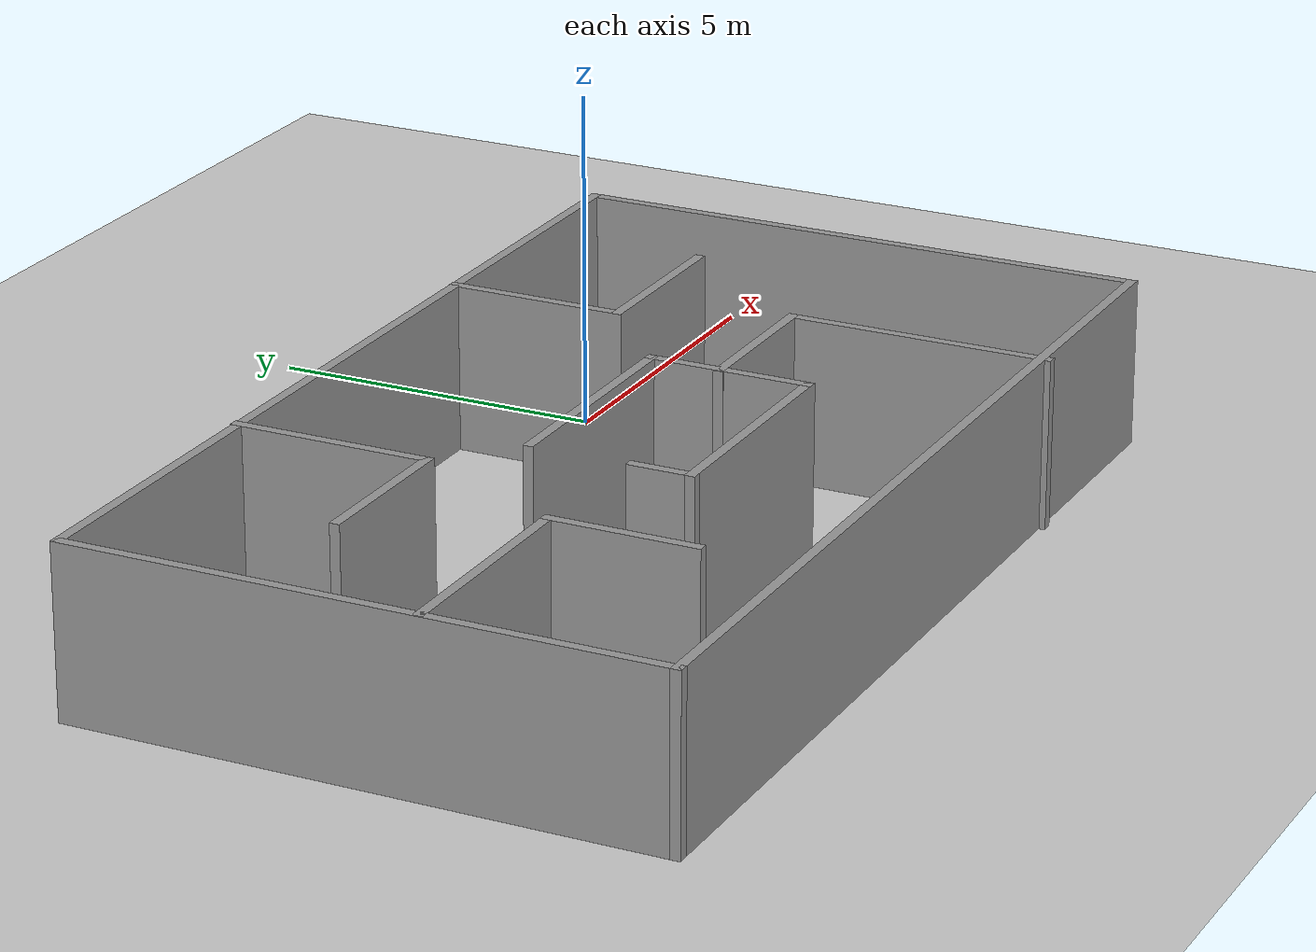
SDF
<sdf version="1.7">
 <world name="default">
  <light name="sun" type="directional">
   <pose>0 0 10 0 -0 0</pose>
   <diffuse>0.8 0.8 0.8 1</diffuse>
   <specular>0.2 0.2 0.2 1</specular>
   <attenuation>
    <range>1000</range>
    <constant>0.9</constant>
    <linear>0.01</linear>
    <quadratic>0.001</quadratic>
   </attenuation>
   <direction>-0.5 0.1 -0.9</direction>
   <spot><inner_angle>0</inner_angle><outer_angle>0</outer_angle><falloff>0</falloff></spot>
  </light>
  <model name="ground_plane">
   <static>1</static>
   <link name="link">
    <collision name="collision">
     <geometry><plane><normal>0 0 1</normal><size>100 100</size></plane></geometry>
     <surface><friction><ode><mu>100</mu><mu2>50</mu2></ode></friction></surface>
    </collision>
    <visual name="visual">
     <cast_shadows>0</cast_shadows>
     <geometry><plane><normal>0 0 1</normal><size>100 100</size></plane></geometry>
     <material>
      <script><uri>file://media/materials/scripts/gazebo.material</uri><name>Gazebo/Grey</name></script>
     </material>
    </visual>
   </link>
  </model>
  <gravity>0 0 -9.8</gravity>
  <magnetic_field>6e-06 2.3e-05 -4.2e-05</magnetic_field>
  <atmosphere type="adiabatic"/>
  <physics type="ode">
   <max_step_size>0.001</max_step_size>
   <real_time_factor>1</real_time_factor>
   <real_time_update_rate>1000</real_time_update_rate>
  </physics>
  <scene><ambient>0.4 0.4 0.4 1</ambient><background>0.7 0.7 0.7 1</background><shadows>1</shadows></scene>
  <audio><device>default</device></audio>
  <spherical_coordinates>
   <surface_model>EARTH_WGS84</surface_model>
   <latitude_deg>0</latitude_deg>
   <longitude_deg>0</longitude_deg>
   <elevation>0</elevation>
   <heading_deg>0</heading_deg>
  </spherical_coordinates>
  <model name="Untitled">
   <pose>-4.68699 -2.71779 0 0 -0 0</pose>
   <link name="Wall_0">
    <collision name="Wall_0_Collision">
     <geometry><box><size>15 0.15 2.5</size></box></geometry>
     <pose>0 0 1.25 0 -0 0</pose>
    </collision>
    <visual name="Wall_0_Visual">
     <pose>0 0 1.25 0 -0 0</pose>
     <geometry><box><size>15 0.15 2.5</size></box></geometry>
     <material>
      <script><uri>file://media/materials/scripts/gazebo.material</uri><name>Gazebo/Grey</name></script>
      <ambient>1 1 1 1</ambient>
     </material>
     <meta><layer>0</layer></meta>
    </visual>
    <pose>0 3.94254 0 0 -0 0</pose>
   </link>
   <link name="Wall_1">
    <collision name="Wall_1_Collision">
     <geometry><box><size>8.75 0.15 2.5</size></box></geometry>
     <pose>0 0 1.25 0 -0 0</pose>
    </collision>
    <visual name="Wall_1_Visual">
     <pose>0 0 1.25 0 -0 0</pose>
     <geometry><box><size>8.75 0.15 2.5</size></box></geometry>
     <material>
      <script><uri>file://media/materials/scripts/gazebo.material</uri><name>Gazebo/Grey</name></script>
      <ambient>1 1 1 1</ambient>
     </material>
     <meta><layer>0</layer></meta>
    </visual>
    <pose>7.425 -0.357459 0 0 -0 -1.5708</pose>
   </link>
   <link name="Wall_10">
    <collision name="Wall_10_Collision">
     <geometry><box><size>3.75 0.15 2.5</size></box></geometry>
     <pose>0 0 1.25 0 -0 0</pose>
    </collision>
    <visual name="Wall_10_Visual">
     <pose>0 0 1.25 0 -0 0</pose>
     <geometry><box><size>3.75 0.15 2.5</size></box></geometry>
     <material>
      <script><uri>file://media/materials/scripts/gazebo.material</uri><name>Gazebo/Grey</name></script>
      <ambient>1 1 1 1</ambient>
     </material>
     <meta><layer>0</layer></meta>
    </visual>
    <pose>-0.149494 0.151863 0 0 -0 0</pose>
   </link>
   <link name="Wall_11">
    <collision name="Wall_11_Collision">
     <geometry><box><size>2.5 0.15 2.5</size></box></geometry>
     <pose>0 0 1.25 0 -0 0</pose>
    </collision>
    <visual name="Wall_11_Visual">
     <pose>0 0 1.25 0 -0 0</pose>
     <geometry><box><size>2.5 0.15 2.5</size></box></geometry>
     <material>
      <script><uri>file://media/materials/scripts/gazebo.material</uri><name>Gazebo/Grey</name></script>
      <ambient>1 1 1 1</ambient>
     </material>
     <meta><layer>0</layer></meta>
    </visual>
    <pose>1.65051 -1.02314 0 0 -0 -1.5708</pose>
   </link>
   <link name="Wall_12">
    <collision name="Wall_12_Collision">
     <geometry><box><size>3.75 0.15 2.5</size></box></geometry>
     <pose>0 0 1.25 0 -0 0</pose>
    </collision>
    <visual name="Wall_12_Visual">
     <pose>0 0 1.25 0 -0 0</pose>
     <geometry><box><size>3.75 0.15 2.5</size></box></geometry>
     <material>
      <script><uri>file://media/materials/scripts/gazebo.material</uri><name>Gazebo/Grey</name></script>
      <ambient>1 1 1 1</ambient>
     </material>
     <meta><layer>0</layer></meta>
    </visual>
    <pose>-0.149494 -2.19814 0 0 -0 3.14159</pose>
   </link>
   <link name="Wall_13">
    <collision name="Wall_13_Collision">
     <geometry><box><size>1 0.15 2.5</size></box></geometry>
     <pose>0 0 1.25 0 -0 0</pose>
    </collision>
    <visual name="Wall_13_Visual">
     <pose>0 0 1.25 0 -0 0</pose>
     <geometry><box><size>1 0.15 2.5</size></box></geometry>
     <material>
      <script><uri>file://media/materials/scripts/gazebo.material</uri><name>Gazebo/Grey</name></script>
      <ambient>1 1 1 1</ambient>
     </material>
     <meta><layer>0</layer></meta>
    </visual>
    <pose>-1.94949 -1.77314 0 0 -0 1.5708</pose>
   </link>
   <link name="Wall_16">
    <collision name="Wall_16_Collision">
     <geometry><box><size>3.5 0.15 2.5</size></box></geometry>
     <pose>0 0 1.25 0 -0 0</pose>
    </collision>
    <visual name="Wall_16_Visual">
     <pose>0 0 1.25 0 -0 0</pose>
     <geometry><box><size>3.5 0.15 2.5</size></box></geometry>
     <material>
      <script><uri>file://media/materials/scripts/gazebo.material</uri><name>Gazebo/Grey</name></script>
      <ambient>1 1 1 1</ambient>
     </material>
     <meta><layer>0</layer></meta>
    </visual>
    <pose>-5.73139 -1.19487 0 0 -0 0</pose>
   </link>
   <link name="Wall_17">
    <collision name="Wall_17_Collision">
     <geometry><box><size>2.25 0.15 2.5</size></box></geometry>
     <pose>0 0 1.25 0 -0 0</pose>
    </collision>
    <visual name="Wall_17_Visual">
     <pose>0 0 1.25 0 -0 0</pose>
     <geometry><box><size>2.25 0.15 2.5</size></box></geometry>
     <material>
      <script><uri>file://media/materials/scripts/gazebo.material</uri><name>Gazebo/Grey</name></script>
      <ambient>1 1 1 1</ambient>
     </material>
     <meta><layer>0</layer></meta>
    </visual>
    <pose>-4.05639 -2.24487 0 0 -0 -1.5708</pose>
   </link>
   <link name="Wall_2">
    <collision name="Wall_2_Collision">
     <geometry><box><size>15 0.15 2.5</size></box></geometry>
     <pose>0 0 1.25 0 -0 0</pose>
    </collision>
    <visual name="Wall_2_Visual">
     <pose>0 0 1.25 0 -0 0</pose>
     <geometry><box><size>15 0.15 2.5</size></box></geometry>
     <material>
      <script><uri>file://media/materials/scripts/gazebo.material</uri><name>Gazebo/Grey</name></script>
      <ambient>1 1 1 1</ambient>
     </material>
     <meta><layer>0</layer></meta>
    </visual>
    <pose>0 -4.65746 0 0 -0 3.14159</pose>
   </link>
   <link name="Wall_20">
    <collision name="Wall_20_Collision">
     <geometry><box><size>2.5 0.15 2.5</size></box></geometry>
     <pose>0 0 1.25 0 -0 0</pose>
    </collision>
    <visual name="Wall_20_Visual">
     <pose>0 0 1.25 0 -0 0</pose>
     <geometry><box><size>2.5 0.15 2.5</size></box></geometry>
     <material>
      <script><uri>file://media/materials/scripts/gazebo.material</uri><name>Gazebo/Grey</name></script>
      <ambient>1 1 1 1</ambient>
     </material>
     <meta><layer>0</layer></meta>
    </visual>
    <pose>2.81097 -0.897541 0 0 -0 0</pose>
   </link>
   <link name="Wall_23">
    <collision name="Wall_23_Collision">
     <geometry><box><size>4 0.15 2.5</size></box></geometry>
     <pose>0 0 1.25 0 -0 0</pose>
    </collision>
    <visual name="Wall_23_Visual">
     <pose>0 0 1.25 0 -0 0</pose>
     <geometry><box><size>4 0.15 2.5</size></box></geometry>
     <material>
      <script><uri>file://media/materials/scripts/gazebo.material</uri><name>Gazebo/Grey</name></script>
      <ambient>1 1 1 1</ambient>
     </material>
     <meta><layer>0</layer></meta>
    </visual>
    <pose>3.98597 -2.82254 0 0 -0 -1.5708</pose>
   </link>
   <link name="Wall_25">
    <collision name="Wall_25_Collision">
     <geometry><box><size>2.75 0.15 2.5</size></box></geometry>
     <pose>0 0 1.25 0 -0 0</pose>
    </collision>
    <visual name="Wall_25_Visual">
     <pose>0 0 1.25 0 -0 0</pose>
     <geometry><box><size>2.75 0.15 2.5</size></box></geometry>
     <material>
      <script><uri>file://media/materials/scripts/gazebo.material</uri><name>Gazebo/Grey</name></script>
      <ambient>1 1 1 1</ambient>
     </material>
     <meta><layer>0</layer></meta>
    </visual>
    <pose>3.02391 2.65199 0 0 -0 -1.5708</pose>
   </link>
   <link name="Wall_26">
    <collision name="Wall_26_Collision">
     <geometry><box><size>2.75 0.15 2.5</size></box></geometry>
     <pose>0 0 1.25 0 -0 0</pose>
    </collision>
    <visual name="Wall_26_Visual">
     <pose>0 0 1.25 0 -0 0</pose>
     <geometry><box><size>2.75 0.15 2.5</size></box></geometry>
     <material>
      <script><uri>file://media/materials/scripts/gazebo.material</uri><name>Gazebo/Grey</name></script>
      <ambient>1 1 1 1</ambient>
     </material>
     <meta><layer>0</layer></meta>
    </visual>
    <pose>4.32391 1.35199 0 0 -0 0</pose>
   </link>
   <link name="Wall_3">
    <collision name="Wall_3_Collision">
     <geometry><box><size>8.75 0.15 2.5</size></box></geometry>
     <pose>0 0 1.25 0 -0 0</pose>
    </collision>
    <visual name="Wall_3_Visual">
     <pose>0 0 1.25 0 -0 0</pose>
     <geometry><box><size>8.75 0.15 2.5</size></box></geometry>
     <material>
      <script><uri>file://media/materials/scripts/gazebo.material</uri><name>Gazebo/Grey</name></script>
      <ambient>1 1 1 1</ambient>
     </material>
     <meta><layer>0</layer></meta>
    </visual>
    <pose>-7.425 -0.357459 0 0 -0 1.5708</pose>
   </link>
   <link name="Wall_6">
    <collision name="Wall_6_Collision">
     <geometry><box><size>3 0.15 2.5</size></box></geometry>
     <pose>0 0 1.25 0 -0 0</pose>
    </collision>
    <visual name="Wall_6_Visual">
     <pose>0 0 1.25 0 -0 0</pose>
     <geometry><box><size>3 0.15 2.5</size></box></geometry>
     <material>
      <script><uri>file://media/materials/scripts/gazebo.material</uri><name>Gazebo/Grey</name></script>
      <ambient>1 1 1 1</ambient>
     </material>
     <meta><layer>0</layer></meta>
    </visual>
    <pose>-3.01639 2.5397 0 0 -0 -1.5708</pose>
   </link>
   <link name="Wall_7">
    <collision name="Wall_7_Collision">
     <geometry><box><size>2.5 0.15 2.5</size></box></geometry>
     <pose>0 0 1.25 0 -0 0</pose>
    </collision>
    <visual name="Wall_7_Visual">
     <pose>0 0 1.25 0 -0 0</pose>
     <geometry><box><size>2.5 0.15 2.5</size></box></geometry>
     <material>
      <script><uri>file://media/materials/scripts/gazebo.material</uri><name>Gazebo/Grey</name></script>
      <ambient>1 1 1 1</ambient>
     </material>
     <meta><layer>0</layer></meta>
    </visual>
    <pose>-4.19139 1.1147 0 0 -0 3.14159</pose>
   </link>
   <static>1</static>
  </model>
 </world>
</sdf>
